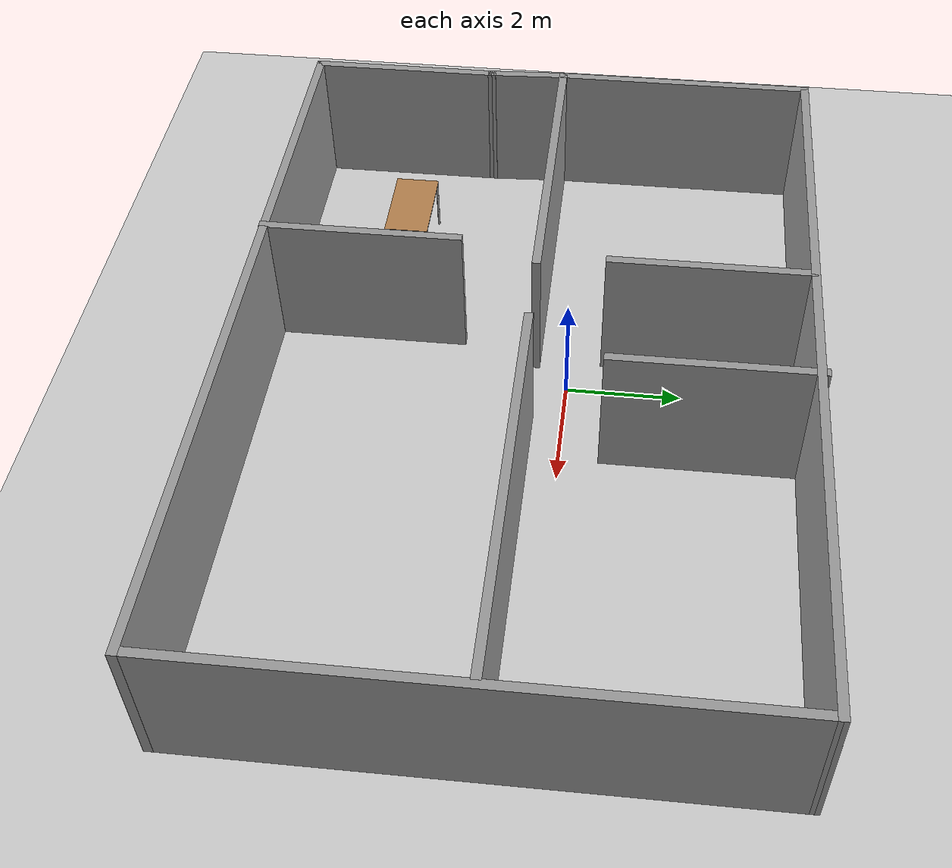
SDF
<sdf version="1.7">
 <world name="default">
  <light name="sun" type="directional">
   <pose>0 0 10 0 -0 0</pose>
   <diffuse>0.8 0.8 0.8 1</diffuse>
   <specular>0.2 0.2 0.2 1</specular>
   <attenuation>
    <range>1000</range>
    <constant>0.9</constant>
    <linear>0.01</linear>
    <quadratic>0.001</quadratic>
   </attenuation>
   <direction>-0.5 0.1 -0.9</direction>
   <spot><inner_angle>0</inner_angle><outer_angle>0</outer_angle><falloff>0</falloff></spot>
  </light>
  <model name="ground_plane">
   <static>1</static>
   <link name="link">
    <collision name="collision">
     <geometry><plane><normal>0 0 1</normal><size>100 100</size></plane></geometry>
     <surface>
      <contact><collide_bitmask>65535</collide_bitmask></contact>
      <friction><ode><mu>100</mu><mu2>50</mu2></ode></friction>
     </surface>
    </collision>
    <visual name="visual">
     <cast_shadows>0</cast_shadows>
     <geometry><plane><normal>0 0 1</normal><size>100 100</size></plane></geometry>
     <material>
      <script><uri>file://media/materials/scripts/gazebo.material</uri><name>Gazebo/Grey</name></script>
     </material>
    </visual>
   </link>
  </model>
  <gravity>0 0 -9.8</gravity>
  <magnetic_field>6e-06 2.3e-05 -4.2e-05</magnetic_field>
  <atmosphere type="adiabatic"/>
  <physics type="ode">
   <max_step_size>0.001</max_step_size>
   <real_time_factor>1</real_time_factor>
   <real_time_update_rate>1000</real_time_update_rate>
  </physics>
  <scene><ambient>0.4 0.4 0.4 1</ambient><background>0.7 0.7 0.7 1</background><shadows>1</shadows></scene>
  <audio><device>default</device></audio>
  <spherical_coordinates>
   <surface_model>EARTH_WGS84</surface_model>
   <latitude_deg>0</latitude_deg>
   <longitude_deg>0</longitude_deg>
   <elevation>0</elevation>
   <heading_deg>0</heading_deg>
  </spherical_coordinates>
  <model name="apartment">
   <pose>0.781785 -0.618787 0 0 -0 0</pose>
   <link name="Wall_100">
    <collision name="Wall_100_Collision">
     <geometry><box><size>6.75 0.15 2.5</size></box></geometry>
     <pose>0 0 1.25 0 -0 0</pose>
    </collision>
    <visual name="Wall_100_Visual">
     <pose>0 0 1.25 0 -0 0</pose>
     <geometry><box><size>6.75 0.15 2.5</size></box></geometry>
     <material>
      <script><uri>file://media/materials/scripts/gazebo.material</uri><name>Gazebo/Grey</name></script>
      <ambient>1 1 1 1</ambient>
     </material>
     <meta><layer>0</layer></meta>
    </visual>
    <pose>3.28051 0.025788 0 0 -0 0</pose>
   </link>
   <link name="Wall_102">
    <collision name="Wall_102_Collision">
     <geometry><box><size>3.5 0.15 2.5</size></box></geometry>
     <pose>0 0 1.25 0 -0 0</pose>
    </collision>
    <visual name="Wall_102_Visual">
     <pose>0 0 1.25 0 -0 0</pose>
     <geometry><box><size>3.5 0.15 2.5</size></box></geometry>
     <material>
      <script><uri>file://media/materials/scripts/gazebo.material</uri><name>Gazebo/Grey</name></script>
      <ambient>1 1 1 1</ambient>
     </material>
     <meta><layer>0</layer></meta>
    </visual>
    <pose>-1.5091 2.92602 0 0 -0 -1.5708</pose>
   </link>
   <link name="Wall_104">
    <collision name="Wall_104_Collision">
     <geometry><box><size>3.5 0.15 2.5</size></box></geometry>
     <pose>0 0 1.25 0 -0 0</pose>
    </collision>
    <visual name="Wall_104_Visual">
     <pose>0 0 1.25 0 -0 0</pose>
     <geometry><box><size>3.5 0.15 2.5</size></box></geometry>
     <material>
      <script><uri>file://media/materials/scripts/gazebo.material</uri><name>Gazebo/Grey</name></script>
      <ambient>1 1 1 1</ambient>
     </material>
     <meta><layer>0</layer></meta>
    </visual>
    <pose>0.751914 3.03242 0 0 -0 -1.5708</pose>
   </link>
   <link name="Wall_106">
    <collision name="Wall_106_Collision">
     <geometry><box><size>1.52545 0.15 2.5</size></box></geometry>
     <pose>0 0 1.25 0 -0 0</pose>
    </collision>
    <visual name="Wall_106_Visual">
     <pose>0 0 1.25 0 -0 0</pose>
     <geometry><box><size>1.52545 0.15 2.5</size></box></geometry>
     <material>
      <script><uri>file://media/materials/scripts/gazebo.material</uri><name>Gazebo/Grey</name></script>
      <ambient>1 1 1 1</ambient>
     </material>
     <meta><layer>0</layer></meta>
    </visual>
    <pose>-6.67332 -0.658262 0 0 -0 -1.52297</pose>
   </link>
   <link name="Wall_88">
    <collision name="Wall_88_Collision">
     <geometry><box><size>9.5 0.15 2.5</size></box></geometry>
     <pose>0 0 1.25 0 -0 0</pose>
    </collision>
    <visual name="Wall_88_Visual">
     <pose>0 0 1.25 0 -0 0</pose>
     <geometry><box><size>9.5 0.15 2.5</size></box></geometry>
     <material>
      <script><uri>file://media/materials/scripts/gazebo.material</uri><name>Gazebo/Grey</name></script>
      <ambient>1 1 1 1</ambient>
     </material>
     <meta><layer>0</layer></meta>
    </visual>
    <pose>6.70955 -0.020201 0 0 -0 -1.5708</pose>
   </link>
   <link name="Wall_90">
    <collision name="Wall_90_Collision">
     <geometry><box><size>13.5 0.15 2.5</size></box></geometry>
     <pose>0 0 1.25 0 -0 0</pose>
    </collision>
    <visual name="Wall_90_Visual">
     <pose>0 0 1.25 0 -0 0</pose>
     <geometry><box><size>13.5 0.15 2.5</size></box></geometry>
     <material>
      <script><uri>file://media/materials/scripts/gazebo.material</uri><name>Gazebo/Grey</name></script>
      <ambient>1 1 1 1</ambient>
     </material>
     <meta><layer>0</layer></meta>
    </visual>
    <pose>0.034553 -4.6952 0 0 -0 3.14159</pose>
   </link>
   <link name="Wall_91">
    <collision name="Wall_91_Collision">
     <geometry><box><size>3.5 0.15 2.5</size></box></geometry>
     <pose>0 0 1.25 0 -0 0</pose>
    </collision>
    <visual name="Wall_91_Visual">
     <pose>0 0 1.25 0 -0 0</pose>
     <geometry><box><size>3.5 0.15 2.5</size></box></geometry>
     <material>
      <script><uri>file://media/materials/scripts/gazebo.material</uri><name>Gazebo/Grey</name></script>
      <ambient>1 1 1 1</ambient>
     </material>
     <meta><layer>0</layer></meta>
    </visual>
    <pose>-6.64045 -3.0202 0 0 -0 1.5708</pose>
   </link>
   <link name="Wall_93">
    <collision name="Wall_93_Collision">
     <geometry><box><size>4.75 0.15 2.5</size></box></geometry>
     <pose>0 0 1.25 0 -0 0</pose>
    </collision>
    <visual name="Wall_93_Visual">
     <pose>0 0 1.25 0 -0 0</pose>
     <geometry><box><size>4.75 0.15 2.5</size></box></geometry>
     <material>
      <script><uri>file://media/materials/scripts/gazebo.material</uri><name>Gazebo/Grey</name></script>
      <ambient>1 1 1 1</ambient>
     </material>
     <meta><layer>0</layer></meta>
    </visual>
    <pose>-6.7062 2.32868 0 0 -0 1.5708</pose>
   </link>
   <link name="Wall_94">
    <collision name="Wall_94_Collision">
     <geometry><box><size>13.5658 0.15 2.5</size></box></geometry>
     <pose>0 0 1.25 0 -0 0</pose>
    </collision>
    <visual name="Wall_94_Visual">
     <pose>0 0 1.25 0 -0 0</pose>
     <geometry><box><size>13.5658 0.15 2.5</size></box></geometry>
     <material>
      <script><uri>file://media/materials/scripts/gazebo.material</uri><name>Gazebo/Grey</name></script>
      <ambient>1 1 1 1</ambient>
     </material>
     <meta><layer>0</layer></meta>
    </visual>
    <pose>0.001677 4.64174 0 0 -0 0.001947</pose>
   </link>
   <link name="Wall_96">
    <collision name="Wall_96_Collision">
     <geometry><box><size>3.5 0.15 2.5</size></box></geometry>
     <pose>0 0 1.25 0 -0 0</pose>
    </collision>
    <visual name="Wall_96_Visual">
     <pose>0 0 1.25 0 -0 0</pose>
     <geometry><box><size>3.5 0.15 2.5</size></box></geometry>
     <material>
      <script><uri>file://media/materials/scripts/gazebo.material</uri><name>Gazebo/Grey</name></script>
      <ambient>1 1 1 1</ambient>
     </material>
     <meta><layer>0</layer></meta>
    </visual>
    <pose>-1.8017 -3.03242 0 0 -0 -1.5708</pose>
   </link>
   <link name="Wall_98">
    <collision name="Wall_98_Collision">
     <geometry><box><size>5.5 0.15 2.5</size></box></geometry>
     <pose>0 0 1.25 0 -0 0</pose>
    </collision>
    <visual name="Wall_98_Visual">
     <pose>0 0 1.25 0 -0 0</pose>
     <geometry><box><size>5.5 0.15 2.5</size></box></geometry>
     <material>
      <script><uri>file://media/materials/scripts/gazebo.material</uri><name>Gazebo/Grey</name></script>
      <ambient>1 1 1 1</ambient>
     </material>
     <meta><layer>0</layer></meta>
    </visual>
    <pose>-4.0312 0.028678 0 0 -0 0</pose>
   </link>
   <static>1</static>
  </model>
  <model name="table">
   <static>1</static>
   <link name="link">
    <collision name="surface">
     <pose>0 0 1 0 -0 0</pose>
     <geometry><box><size>1.5 0.8 0.03</size></box></geometry>
     <surface><friction><ode><mu>0.6</mu><mu2>0.6</mu2></ode></friction></surface>
    </collision>
    <visual name="visual1">
     <pose>0 0 1 0 -0 0</pose>
     <geometry><box><size>1.5 0.8 0.03</size></box></geometry>
     <material>
      <script><uri>file://media/materials/scripts/gazebo.material</uri><name>Gazebo/Wood</name></script>
     </material>
    </visual>
    <collision name="front_left_leg">
     <pose>0.68 0.38 0.5 0 -0 0</pose>
     <geometry><cylinder><radius>0.02</radius><length>1</length></cylinder></geometry>
    </collision>
    <visual name="front_left_leg">
     <pose>0.68 0.38 0.5 0 -0 0</pose>
     <geometry><cylinder><radius>0.02</radius><length>1</length></cylinder></geometry>
     <material>
      <script><uri>file://media/materials/scripts/gazebo.material</uri><name>Gazebo/Grey</name></script>
     </material>
    </visual>
    <collision name="front_right_leg">
     <pose>0.68 -0.38 0.5 0 -0 0</pose>
     <geometry><cylinder><radius>0.02</radius><length>1</length></cylinder></geometry>
    </collision>
    <visual name="front_right_leg">
     <pose>0.68 -0.38 0.5 0 -0 0</pose>
     <geometry><cylinder><radius>0.02</radius><length>1</length></cylinder></geometry>
     <material>
      <script><uri>file://media/materials/scripts/gazebo.material</uri><name>Gazebo/Grey</name></script>
     </material>
    </visual>
    <collision name="back_right_leg">
     <pose>-0.68 -0.38 0.5 0 -0 0</pose>
     <geometry><cylinder><radius>0.02</radius><length>1</length></cylinder></geometry>
    </collision>
    <visual name="back_right_leg">
     <pose>-0.68 -0.38 0.5 0 -0 0</pose>
     <geometry><cylinder><radius>0.02</radius><length>1</length></cylinder></geometry>
     <material>
      <script><uri>file://media/materials/scripts/gazebo.material</uri><name>Gazebo/Grey</name></script>
     </material>
    </visual>
    <collision name="back_left_leg">
     <pose>-0.68 0.38 0.5 0 -0 0</pose>
     <geometry><cylinder><radius>0.02</radius><length>1</length></cylinder></geometry>
    </collision>
    <visual name="back_left_leg">
     <pose>-0.68 0.38 0.5 0 -0 0</pose>
     <geometry><cylinder><radius>0.02</radius><length>1</length></cylinder></geometry>
     <material>
      <script><uri>file://media/materials/scripts/gazebo.material</uri><name>Gazebo/Grey</name></script>
     </material>
    </visual>
   </link>
   <pose>-3.56126 -3.24856 0 0 -0 0</pose>
  </model>
 </world>
</sdf>
